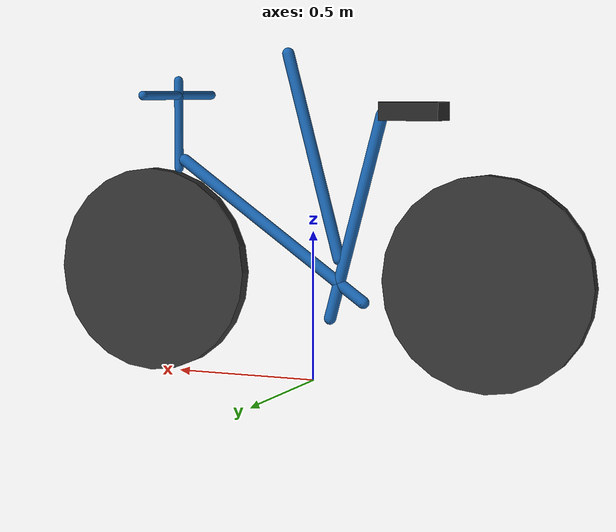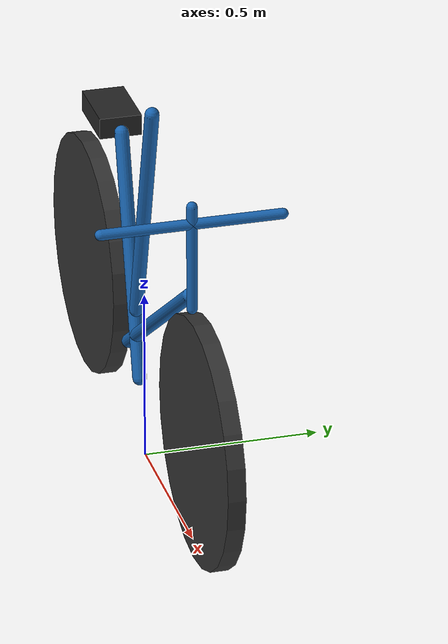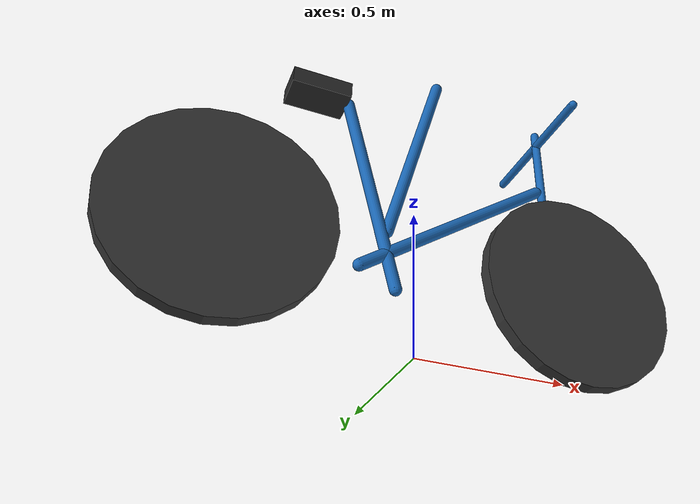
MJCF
<mujoco>
  <!-- Bicycle model -->
  <asset>
    <material name="bike_frame" rgba="0.1 0.4 0.7 1"/>
    <material name="bike_wheel" rgba="0.2 0.2 0.2 1"/>
    <material name="bike_seat" rgba="0.15 0.15 0.15 1"/>
  </asset>

  <worldbody>
    <body name="bicycle_root">
      <!-- Frame tubes -->
      <geom name="frame_top" type="capsule" size="0.02 0.35" pos="0 0 0.75" euler="0 15 0" material="bike_frame"/>
      <geom name="frame_down" type="capsule" size="0.02 0.4" pos="0.15 0 0.5" euler="0 55 0" material="bike_frame"/>
      <geom name="frame_seat" type="capsule" size="0.02 0.35" pos="-0.15 0 0.55" euler="0 -15 0" material="bike_frame"/>

      <!-- Handlebars -->
      <geom name="handlebar" type="capsule" size="0.015 0.25" pos="0.5 0 0.95" euler="90 0 0" material="bike_frame"/>
      <geom name="stem" type="capsule" size="0.015 0.15" pos="0.5 0 0.85" euler="0 0 0" material="bike_frame"/>

      <!-- Seat -->
      <geom name="seat" type="box" size="0.1 0.06 0.03" pos="-0.35 0 0.9" material="bike_seat"/>

      <!-- Wheels -->
      <geom name="front_wheel" type="cylinder" size="0.35 0.025" pos="0.6 0 0.35" euler="90 0 0" material="bike_wheel"/>
      <geom name="rear_wheel" type="cylinder" size="0.35 0.025" pos="-0.6 0 0.35" euler="90 0 0" material="bike_wheel"/>
    </body>
  </worldbody>
</mujoco>
